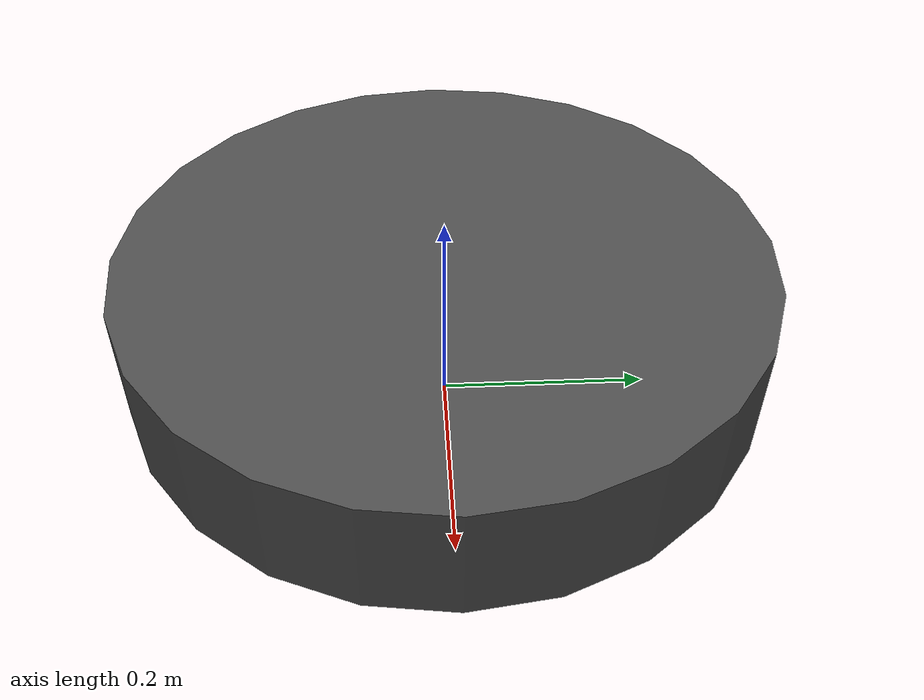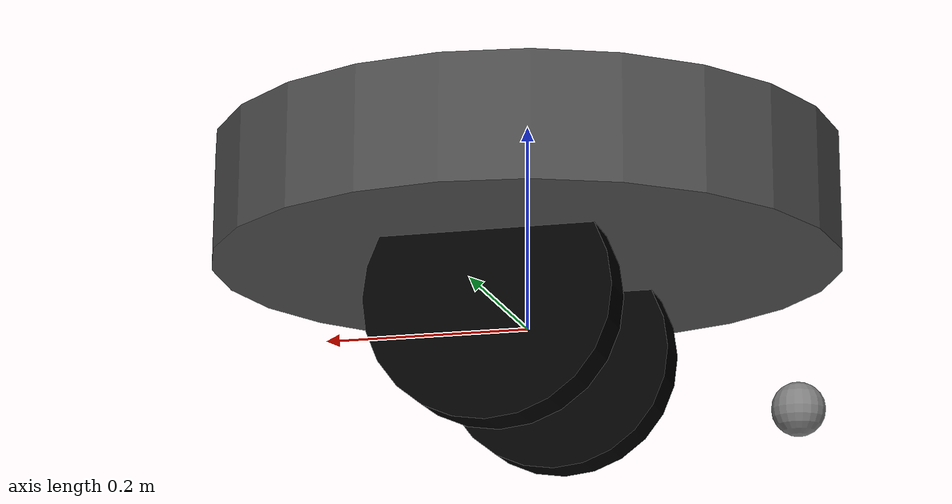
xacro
<?xml version="1.0"?>
<robot xmlns:xacro="http://www.ros.org/wiki/xacro" name="kibisis">
  <xacro:arg name="prefix" default="" />
  <xacro:arg name="hardware_plugin" default="kibisis_hardware/KibisisSystemHardware" />

  <!-- Import URDF description -->
  <xacro:include filename="$(find kibisis_description)/urdf/kibisis.urdf.xacro" />
  <!-- Import colours for rviz -->
  <xacro:include filename="$(find kibisis_description)/urdf/kibisis.materials.xacro" />
  <!-- Import ros2_control description -->
  <xacro:include filename="$(find kibisis_description)/ros2_control/kibisis.ros2_control.xacro" />

  <!-- Instantiate the description and the ROS2 control information -->
  <xacro:kibisis prefix="$(arg prefix)" />
  <xacro:kibisis_ros2_control
    name="Kibisis"
    prefix="$(arg prefix)"
    hardware_plugin="$(arg hardware_plugin)"/>
</robot>

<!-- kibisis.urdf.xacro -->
<robot xmlns:xacro="http://ros.org/wiki/xacro">
  <xacro:macro name="kibisis" params="prefix">
    <!-- Import component files -->
    <xacro:include filename="$(find kibisis_description)/urdf/inertia_macros.xacro"/>
    <xacro:include filename="$(find kibisis_description)/urdf/kibisis_base.urdf.xacro"/>
    <xacro:include filename="$(find kibisis_description)/urdf/kibisis_wheels.urdf.xacro"/>
    <xacro:include filename="$(find kibisis_description)/urdf/kibisis_sensors.urdf.xacro"/>

    <!-- Robot properties -->
    <!-- Wheel dimensions: 20cm diameter, 30cm apart -->
    <xacro:property name="wheel_radius" value="0.115"/>
    <xacro:property name="wheel_width" value="0.05"/>
    <xacro:property name="wheel_separation" value="0.25"/>
    <xacro:property name="wheel_mass" value="0.3"/>

    <!-- Base dimensions (disc-shaped like Roomba) -->
    <xacro:property name="base_radius" value="0.30"/>
    <xacro:property name="base_height" value="0.115"/>
    <xacro:property name="base_mass" value="2.0"/>

    <!-- Caster wheel properties -->
    <xacro:property name="caster_radius" value="0.025"/>
    <xacro:property name="caster_mass" value="0.1"/>

    <!-- Camera position: 4cm above wheel axle -->
    <xacro:property name="camera_height" value="0.15"/>

    <!-- Base link -->
    <link name="${prefix}base_link"/>

    <!-- Footprint link (ground contact point) -->
    <link name="${prefix}base_footprint"/>
    <joint name="${prefix}base_footprint_joint" type="fixed">
      <origin xyz="0.0 0.0 0.0" rpy="0.0 0.0 0.0"/>
      <parent link="${prefix}base_footprint"/>
      <child link="${prefix}base_link"/>
    </joint>

    <!-- CHASSIS -->
    <xacro:kibisis_base prefix="${prefix}"
                        radius="${base_radius}"
                        height="${base_height}"
                        mass="${base_mass}"
                        wheel_radius="${wheel_radius}"/>

    <!-- WHEELS -->
    <!-- Left wheel -->
    <xacro:kibisis_wheel prefix="${prefix}"
                         side="left"
                         radius="${wheel_radius}"
                         width="${wheel_width}"
                         mass="${wheel_mass}"
                         separation="${wheel_separation}"/>

    <!-- Right wheel -->
    <xacro:kibisis_wheel prefix="${prefix}"
                         side="right"
                         radius="${wheel_radius}"
                         width="${wheel_width}"
                         mass="${wheel_mass}"
                         separation="${wheel_separation}"/>

    <!-- Caster wheel (rear support) -->
    <xacro:kibisis_caster prefix="${prefix}"
                          radius="${caster_radius}"
                          mass="${caster_mass}"
                          base_radius="${base_radius}"
                          wheel_radius="${wheel_radius}"/>

    <!-- SENSORS -->
    <xacro:kibisis_sensors prefix="${prefix}"
                           camera_height="${camera_height}"/>

  </xacro:macro>
</robot>

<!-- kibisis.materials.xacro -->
<robot xmlns:xacro="http://www.ros.org/wiki/xacro">

  <material name="black">
    <color rgba="0.0 0.0 0.0 1.0"/>
  </material>

  <material name="dark">
    <color rgba="0.3 0.3 0.3 1.0"/>
  </material>

  <material name="light_black">
    <color rgba="0.4 0.4 0.4 1.0"/>
  </material>

  <material name="blue">
    <color rgba="0.0 0.0 0.8 1.0"/>
  </material>

  <material name="green">
    <color rgba="0.0 0.8 0.0 1.0"/>
  </material>

  <material name="grey">
    <color rgba="0.5 0.5 0.5 1.0"/>
  </material>

  <material name="orange">
    <color rgba="1.0 0.423529411765 0.0392156862745 1.0"/>
  </material>

  <material name="brown">
    <color rgba="0.870588235294 0.811764705882 0.764705882353 1.0"/>
  </material>

  <material name="red">
    <color rgba="0.8 0.0 0.0 1.0"/>
  </material>

  <material name="white">
    <color rgba="1.0 1.0 1.0 1.0"/>
  </material>

</robot>

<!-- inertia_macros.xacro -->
<robot xmlns:xacro="http://www.ros.org/wiki/xacro">

  <!-- Box inertia macro -->
  <xacro:macro name="box_inertia" params="m x y z">
    <inertia
      ixx="${m*(y*y+z*z)/12}"
      iyy="${m*(x*x+z*z)/12}"
      izz="${m*(x*x+y*y)/12}"
      ixy="0" iyz="0" ixz="0"/>
  </xacro:macro>

  <!-- Cylinder inertia macro (axis along Z) -->
  <xacro:macro name="cylinder_inertia" params="m radius length">
    <inertia
      ixx="${m*(3*radius*radius+length*length)/12}"
      iyy="${m*(3*radius*radius+length*length)/12}"
      izz="${m*radius*radius/2}"
      ixy="0" iyz="0" ixz="0"/>
  </xacro:macro>

  <!-- Cylinder inertia macro (axis along Y) - use for wheels -->
  <xacro:macro name="cylinder_inertia_y" params="m radius length">
    <inertia
      ixx="${m*(3*radius*radius+length*length)/12}"
      iyy="${m*radius*radius/2}"
      izz="${m*(3*radius*radius+length*length)/12}"
      ixy="0" iyz="0" ixz="0"/>
  </xacro:macro>

  <!-- Sphere inertia macro -->
  <xacro:macro name="sphere_inertia" params="m radius">
    <inertia
      ixx="${2*m*radius*radius/5}"
      iyy="${2*m*radius*radius/5}"
      izz="${2*m*radius*radius/5}"
      ixy="0" iyz="0" ixz="0"/>
  </xacro:macro>

</robot>

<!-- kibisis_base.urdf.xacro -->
<robot name="kibisis_base" xmlns:xacro="http://ros.org/wiki/xacro">
  <!-- Kibisis base/chassis - disc-shaped like a Roomba -->

  <xacro:macro name="kibisis_base" params="prefix radius height mass wheel_radius">
    <!-- Main chassis body -->
    <link name="${prefix}chassis">
      <inertial>
        <origin xyz="0.0 0.0 0.0" rpy="0.0 0.0 0.0"/>
        <mass value="${mass}"/>
        <!-- Cylinder inertia for disc-shaped base -->
        <xacro:cylinder_inertia m="${mass}" radius="${radius}" length="${height}"/>
      </inertial>

      <visual>
        <origin xyz="0.0 0.0 0.0" rpy="0.0 0.0 0.0"/>
        <geometry>
          <cylinder radius="${radius}" length="${height}"/>
        </geometry>
        <material name="dark"/>
      </visual>

      <collision>
        <origin xyz="0.0 0.0 0.0" rpy="0.0 0.0 0.0"/>
        <geometry>
          <cylinder radius="${radius}" length="${height}"/>
        </geometry>
      </collision>
    </link>

    <!-- Connect chassis to base_link -->
    <!-- Position chassis so wheel axle is at base_link height -->
    <joint name="${prefix}chassis_joint" type="fixed">
      <origin xyz="0.0 0.0 ${wheel_radius}" rpy="0.0 0.0 0.0"/>
      <parent link="${prefix}base_link"/>
      <child link="${prefix}chassis"/>
    </joint>

    <!-- Gazebo material for chassis -->
    <gazebo reference="${prefix}chassis">
      <material>Gazebo/DarkGrey</material>
    </gazebo>

  </xacro:macro>
</robot>

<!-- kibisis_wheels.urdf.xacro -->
<robot name="kibisis_wheels" xmlns:xacro="http://ros.org/wiki/xacro">
  <!-- Kibisis drive wheels and caster wheel -->

  <!-- Drive wheel macro -->
  <xacro:macro name="kibisis_wheel" params="prefix side radius width mass separation">
    <!-- Calculate Y position based on side -->
    <xacro:property name="y_pos" value="${separation/2 if side == 'left' else -separation/2}"/>

    <link name="${prefix}${side}_wheel">
      <inertial>
        <origin xyz="0.0 0.0 0.0" rpy="0.0 0.0 0.0"/>
        <mass value="${mass}"/>
        <xacro:cylinder_inertia_y m="${mass}" radius="${radius}" length="${width}"/>
      </inertial>

      <visual>
        <origin xyz="0.0 0.0 0.0" rpy="${pi/2} 0.0 0.0"/>
        <geometry>
          <cylinder radius="${radius}" length="${width}"/>
        </geometry>
        <material name="black"/>
      </visual>

      <collision>
        <origin xyz="0.0 0.0 0.0" rpy="${pi/2} 0.0 0.0"/>
        <geometry>
          <cylinder radius="${radius}" length="${width}"/>
        </geometry>
      </collision>
    </link>

    <!-- Wheel joint - continuous rotation -->
    <joint name="${prefix}${side}_wheel_joint" type="continuous">
      <origin xyz="0.0 ${y_pos} 0.0" rpy="0.0 0.0 0.0"/>
      <parent link="${prefix}base_link"/>
      <child link="${prefix}${side}_wheel"/>
      <axis xyz="0 1 0"/>
      <dynamics damping="0.5" friction="0.5"/>
    </joint>

    <!-- Transmission for ros2_control -->
    <transmission name="${prefix}${side}_wheel_trans">
      <type>transmission_interface/SimpleTransmission</type>
      <joint name="${prefix}${side}_wheel_joint">
        <command_interface name="velocity"/>
        <state_interface name="position"/>
        <state_interface name="velocity"/>
      </joint>
      <actuator name="${prefix}${side}_wheel_motor">
        <mechanical_reduction>1.0</mechanical_reduction>
      </actuator>
    </transmission>

    <!-- Gazebo material and friction for wheel -->
    <gazebo reference="${prefix}${side}_wheel">
      <material>Gazebo/Black</material>
      <mu1>1.0</mu1>
      <mu2>1.0</mu2>
      <kp>1000000.0</kp>
      <kd>100.0</kd>
      <minDepth>0.001</minDepth>
      <maxVel>1.0</maxVel>
    </gazebo>
  </xacro:macro>

  <!-- Caster wheel macro (passive support wheel) -->
  <xacro:macro name="kibisis_caster" params="prefix radius mass base_radius wheel_radius">
    <!-- Caster housing link -->
    <link name="${prefix}caster_housing">
      <inertial>
        <origin xyz="0.0 0.0 0.0" rpy="0.0 0.0 0.0"/>
        <mass value="0.05"/>
        <xacro:sphere_inertia m="0.05" radius="0.01"/>
      </inertial>
    </link>

    <!-- Caster housing joint - fixed to chassis, at rear -->
    <joint name="${prefix}caster_housing_joint" type="fixed">
      <origin xyz="${-base_radius + radius + 0.02} 0.0 ${-wheel_radius + radius}" rpy="0.0 0.0 0.0"/>
      <parent link="${prefix}base_link"/>
      <child link="${prefix}caster_housing"/>
    </joint>

    <!-- Caster wheel link (sphere) -->
    <link name="${prefix}caster_wheel">
      <inertial>
        <origin xyz="0.0 0.0 0.0" rpy="0.0 0.0 0.0"/>
        <mass value="${mass}"/>
        <xacro:sphere_inertia m="${mass}" radius="${radius}"/>
      </inertial>

      <visual>
        <origin xyz="0.0 0.0 0.0" rpy="0.0 0.0 0.0"/>
        <geometry>
          <sphere radius="${radius}"/>
        </geometry>
        <material name="grey"/>
      </visual>

      <collision>
        <origin xyz="0.0 0.0 0.0" rpy="0.0 0.0 0.0"/>
        <geometry>
          <sphere radius="${radius}"/>
        </geometry>
      </collision>
    </link>

    <!-- Caster wheel joint - ball joint simulated as fixed for simplicity -->
    <joint name="${prefix}caster_wheel_joint" type="fixed">
      <origin xyz="0.0 0.0 0.0" rpy="0.0 0.0 0.0"/>
      <parent link="${prefix}caster_housing"/>
      <child link="${prefix}caster_wheel"/>
    </joint>

    <!-- Gazebo material and friction for caster -->
    <gazebo reference="${prefix}caster_wheel">
      <material>Gazebo/Grey</material>
      <mu1>0.01</mu1>
      <mu2>0.01</mu2>
      <kp>1000000.0</kp>
      <kd>100.0</kd>
      <minDepth>0.001</minDepth>
      <maxVel>1.0</maxVel>
    </gazebo>
  </xacro:macro>

</robot>

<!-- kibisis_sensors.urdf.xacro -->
<robot xmlns:xacro="http://www.ros.org/wiki/xacro">
  <!-- Kibisis sensors - camera only (no lidar, no IMU) -->

  <xacro:macro name="kibisis_sensors" params="prefix camera_height">

    <!-- Camera link -->
    <link name="${prefix}camera_link">
      <inertial>
        <mass value="0.05"/>
        <origin xyz="0 0 0" rpy="0 0 0"/>
        <xacro:box_inertia m="0.05" x="0.03" y="0.08" z="0.02"/>
      </inertial>
      <visual>
        <origin xyz="0 0 0" rpy="0 0 0"/>
        <geometry>
          <box size="0.03 0.08 0.02"/>
        </geometry>
        <material name="dark"/>
      </visual>
      <collision>
        <origin xyz="0 0 0" rpy="0 0 0"/>
        <geometry>
          <box size="0.03 0.08 0.02"/>
        </geometry>
      </collision>
    </link>

    <!-- Camera joint - mounted at front, 4cm above wheel axle (which is at base_link) -->
    <joint name="${prefix}camera_joint" type="fixed">
      <parent link="${prefix}base_link"/>
      <child link="${prefix}camera_link"/>
      <!-- Camera at front of robot, camera_height above axle, pointing forward -->
      <origin xyz="0.10 0.0 ${camera_height}" rpy="0 0 0"/>
    </joint>

    <!-- Camera optical frame (standard ROS convention: Z forward, X right, Y down) -->
    <link name="${prefix}camera_optical_frame"/>
    <joint name="${prefix}camera_optical_joint" type="fixed">
      <parent link="${prefix}camera_link"/>
      <child link="${prefix}camera_optical_frame"/>
      <!-- Rotate to align with optical frame convention -->
      <origin xyz="0 0 0" rpy="${-pi/2} 0 ${-pi/2}"/>
    </joint>

    <!-- Gazebo camera sensor -->
    <gazebo reference="${prefix}camera_link">
      <material>Gazebo/DarkGrey</material>
      <sensor name="camera" type="camera">
        <pose>0 0 0 0 0 0</pose>
        <visualize>true</visualize>
        <update_rate>30</update_rate>
        <topic>camera/image_raw</topic>
        <camera>
          <horizontal_fov>1.3962634</horizontal_fov>
          <image>
            <width>640</width>
            <height>480</height>
            <format>R8G8B8</format>
          </image>
          <clip>
            <near>0.02</near>
            <far>300</far>
          </clip>
          <noise>
            <type>gaussian</type>
            <mean>0.0</mean>
            <stddev>0.007</stddev>
          </noise>
        </camera>
        <frame>${prefix}camera_optical_frame</frame>
      </sensor>
    </gazebo>

  </xacro:macro>
</robot>
